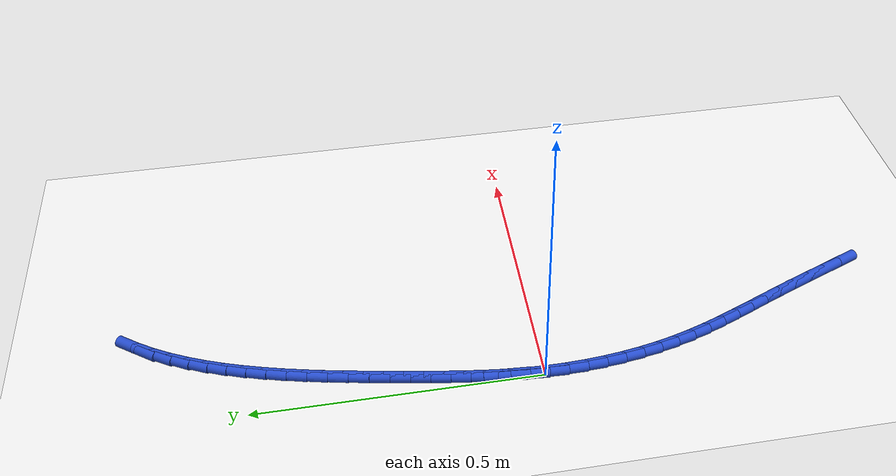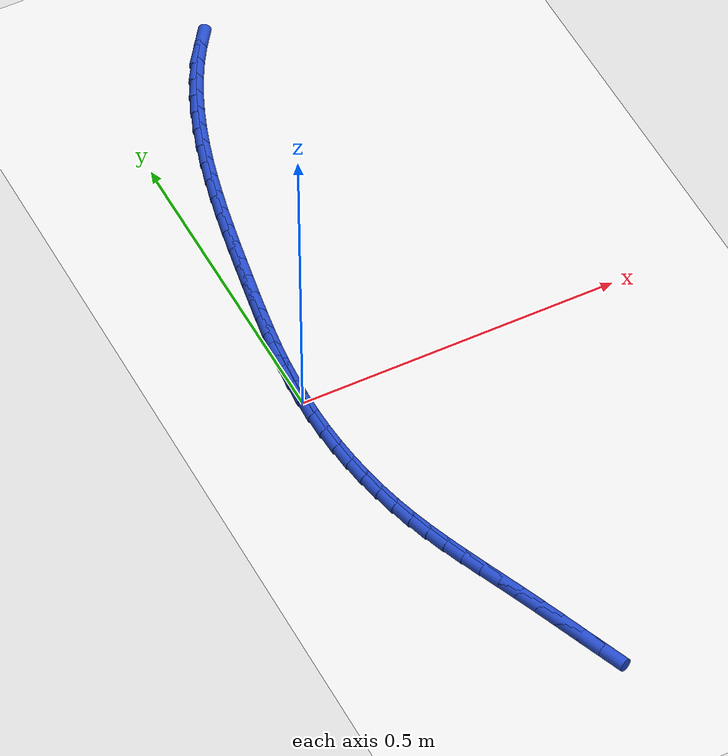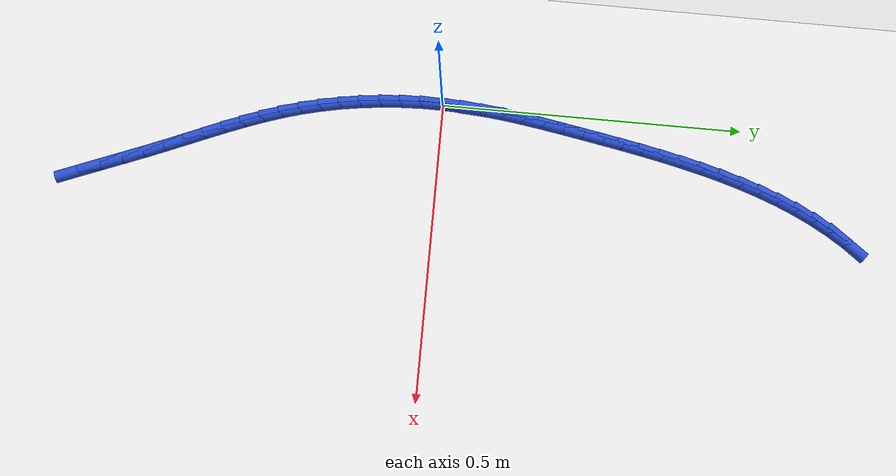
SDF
<sdf version="1.6">
 <world name="default">
  <model name="ground_plane">
   <static>1</static>
   <link name="link">
    <collision name="collision">
     <geometry><plane><normal>0 0 1</normal><size>100 100</size></plane></geometry>
     <surface><friction><ode><mu>100</mu><mu2>50</mu2></ode></friction></surface>
    </collision>
    <visual name="visual">
     <cast_shadows>0</cast_shadows>
     <geometry><plane><normal>0 0 1</normal><size>100 100</size></plane></geometry>
     <material>
      <script><uri>file://media/materials/scripts/gazebo.material</uri><name>Gazebo/WhiteGlow</name></script>
     </material>
    </visual>
   </link>
  </model>
  <model name="line">
   <link name="link_0">
    <pose>8.673617379884035e-19 -3.469446951953614e-17 0.01 0 1.57 1.5308168019717938</pose>
    <collision name="collision">
     <geometry><cylinder><radius>0.01</radius><length>0.08</length></cylinder></geometry>
    </collision>
    <visual name="visual">
     <material>
      <script><name>Gazebo/Blue</name><uri>file://media/materials/scripts/gazebo.material</uri></script>
     </material>
     <geometry><cylinder><radius>0.01</radius><length>0.08</length></cylinder></geometry>
    </visual>
   </link>
   <link name="link_1">
    <pose>0.0013352738086139177 0.03338114501231601 0.01 0 1.57 1.495564774774981</pose>
    <collision name="collision">
     <geometry><cylinder><radius>0.01</radius><length>0.08</length></cylinder></geometry>
    </collision>
    <visual name="visual">
     <material>
      <script><name>Gazebo/Blue</name><uri>file://media/materials/scripts/gazebo.material</uri></script>
     </material>
     <geometry><cylinder><radius>0.01</radius><length>0.08</length></cylinder></geometry>
    </visual>
   </link>
   <link name="link_2">
    <pose>0.003835786866249393 0.0665559732999649 0.01 0 1.57 1.4654453502533111</pose>
    <collision name="collision">
     <geometry><cylinder><radius>0.01</radius><length>0.08</length></cylinder></geometry>
    </collision>
    <visual name="visual">
     <material>
      <script><name>Gazebo/Blue</name><uri>file://media/materials/scripts/gazebo.material</uri></script>
     </material>
     <geometry><cylinder><radius>0.01</radius><length>0.08</length></cylinder></geometry>
    </visual>
   </link>
   <link name="link_3">
    <pose>0.00733151701681408 0.09961487649468123 0.01 0 1.57 1.44072992684641</pose>
    <collision name="collision">
     <geometry><cylinder><radius>0.01</radius><length>0.08</length></cylinder></geometry>
    </collision>
    <visual name="visual">
     <material>
      <script><name>Gazebo/Blue</name><uri>file://media/materials/scripts/gazebo.material</uri></script>
     </material>
     <geometry><cylinder><radius>0.01</radius><length>0.08</length></cylinder></geometry>
    </visual>
   </link>
   <link name="link_4">
    <pose>0.011652442104215637 0.1326482462281996 0.01 0 1.57 1.421570619040127</pose>
    <collision name="collision">
     <geometry><cylinder><radius>0.01</radius><length>0.08</length></cylinder></geometry>
    </collision>
    <visual name="visual">
     <material>
      <script><name>Gazebo/Blue</name><uri>file://media/materials/scripts/gazebo.material</uri></script>
     </material>
     <geometry><cylinder><radius>0.01</radius><length>0.08</length></cylinder></geometry>
    </visual>
   </link>
   <link name="link_5">
    <pose>0.01662853997236172 0.16574647413225468 0.01 0 1.57 1.4080185188563408</pose>
    <collision name="collision">
     <geometry><cylinder><radius>0.01</radius><length>0.08</length></cylinder></geometry>
    </collision>
    <visual name="visual">
     <material>
      <script><name>Gazebo/Blue</name><uri>file://media/materials/scripts/gazebo.material</uri></script>
     </material>
     <geometry><cylinder><radius>0.01</radius><length>0.08</length></cylinder></geometry>
    </visual>
   </link>
   <link name="link_6">
    <pose>0.022089788465159993 0.19899995183858105 0.01 0 1.57 1.4000417860296894</pose>
    <collision name="collision">
     <geometry><cylinder><radius>0.01</radius><length>0.08</length></cylinder></geometry>
    </collision>
    <visual name="visual">
     <material>
      <script><name>Gazebo/Blue</name><uri>file://media/materials/scripts/gazebo.material</uri></script>
     </material>
     <geometry><cylinder><radius>0.01</radius><length>0.08</length></cylinder></geometry>
    </visual>
   </link>
   <link name="link_7">
    <pose>0.027866165426518093 0.2324990709789133 0.01 0 1.57 1.3967645328675942</pose>
    <collision name="collision">
     <geometry><cylinder><radius>0.01</radius><length>0.08</length></cylinder></geometry>
    </collision>
    <visual name="visual">
     <material>
      <script><name>Gazebo/Blue</name><uri>file://media/materials/scripts/gazebo.material</uri></script>
     </material>
     <geometry><cylinder><radius>0.01</radius><length>0.08</length></cylinder></geometry>
    </visual>
   </link>
   <link name="link_8">
    <pose>0.03381162684093896 0.26631654886136963 0.01 0 1.57 1.3923278908149244</pose>
    <collision name="collision">
     <geometry><cylinder><radius>0.01</radius><length>0.08</length></cylinder></geometry>
    </collision>
    <visual name="visual">
     <material>
      <script><name>Gazebo/Blue</name><uri>file://media/materials/scripts/gazebo.material</uri></script>
     </material>
     <geometry><cylinder><radius>0.01</radius><length>0.08</length></cylinder></geometry>
    </visual>
   </link>
   <link name="link_9">
    <pose>0.03995868702896481 0.300393487175124 0.01 0 1.57 1.3841546744231248</pose>
    <collision name="collision">
     <geometry><cylinder><radius>0.01</radius><length>0.08</length></cylinder></geometry>
    </collision>
    <visual name="visual">
     <material>
      <script><name>Gazebo/Blue</name><uri>file://media/materials/scripts/gazebo.material</uri></script>
     </material>
     <geometry><cylinder><radius>0.01</radius><length>0.08</length></cylinder></geometry>
    </visual>
   </link>
   <link name="link_10">
    <pose>0.04642041999198836 0.33461160694702885 0.01 0 1.57 1.3722293470910452</pose>
    <collision name="collision">
     <geometry><cylinder><radius>0.01</radius><length>0.08</length></cylinder></geometry>
    </collision>
    <visual name="visual">
     <material>
      <script><name>Gazebo/Blue</name><uri>file://media/materials/scripts/gazebo.material</uri></script>
     </material>
     <geometry><cylinder><radius>0.01</radius><length>0.08</length></cylinder></geometry>
    </visual>
   </link>
   <link name="link_11">
    <pose>0.05331029121193093 0.36885234064304756 0.01 0 1.57 1.3564924496723376</pose>
    <collision name="collision">
     <geometry><cylinder><radius>0.01</radius><length>0.08</length></cylinder></geometry>
    </collision>
    <visual name="visual">
     <material>
      <script><name>Gazebo/Blue</name><uri>file://media/materials/scripts/gazebo.material</uri></script>
     </material>
     <geometry><cylinder><radius>0.01</radius><length>0.08</length></cylinder></geometry>
    </visual>
   </link>
   <link name="link_12">
    <pose>0.060741766170713994 0.40299712072914445 0.01 0 1.57 1.336832508366309</pose>
    <collision name="collision">
     <geometry><cylinder><radius>0.01</radius><length>0.08</length></cylinder></geometry>
    </collision>
    <visual name="visual">
     <material>
      <script><name>Gazebo/Blue</name><uri>file://media/materials/scripts/gazebo.material</uri></script>
     </material>
     <geometry><cylinder><radius>0.01</radius><length>0.08</length></cylinder></geometry>
    </visual>
   </link>
   <link name="link_13">
    <pose>0.06882831035025888 0.4369273796712832 0.01 0 1.57 1.3130907788760848</pose>
    <collision name="collision">
     <geometry><cylinder><radius>0.01</radius><length>0.08</length></cylinder></geometry>
    </collision>
    <visual name="visual">
     <material>
      <script><name>Gazebo/Blue</name><uri>file://media/materials/scripts/gazebo.material</uri></script>
     </material>
     <geometry><cylinder><radius>0.01</radius><length>0.08</length></cylinder></geometry>
    </visual>
   </link>
   <link name="link_14">
    <pose>0.07768338923248697 0.4705245499354275 0.01 0 1.57 1.285067066201021</pose>
    <collision name="collision">
     <geometry><cylinder><radius>0.01</radius><length>0.08</length></cylinder></geometry>
    </collision>
    <visual name="visual">
     <material>
      <script><name>Gazebo/Blue</name><uri>file://media/materials/scripts/gazebo.material</uri></script>
     </material>
     <geometry><cylinder><radius>0.01</radius><length>0.08</length></cylinder></geometry>
    </visual>
   </link>
   <link name="link_15">
    <pose>0.08742046829931965 0.5036700639875412 0.01 0 1.57 1.2525277943087436</pose>
    <collision name="collision">
     <geometry><cylinder><radius>0.01</radius><length>0.08</length></cylinder></geometry>
    </collision>
    <visual name="visual">
     <material>
      <script><name>Gazebo/Blue</name><uri>file://media/materials/scripts/gazebo.material</uri></script>
     </material>
     <geometry><cylinder><radius>0.01</radius><length>0.08</length></cylinder></geometry>
    </visual>
   </link>
   <link name="link_16">
    <pose>0.09815301303267832 0.5362453542935881 0.01 0 1.57 1.2152177916173208</pose>
    <collision name="collision">
     <geometry><cylinder><radius>0.01</radius><length>0.08</length></cylinder></geometry>
    </collision>
    <visual name="visual">
     <material>
      <script><name>Gazebo/Blue</name><uri>file://media/materials/scripts/gazebo.material</uri></script>
     </material>
     <geometry><cylinder><radius>0.01</radius><length>0.08</length></cylinder></geometry>
    </visual>
   </link>
   <link name="link_17">
    <pose>0.10999448891448435 0.5681318533195325 0.01 0 1.57 1.1728775287144781</pose>
    <collision name="collision">
     <geometry><cylinder><radius>0.01</radius><length>0.08</length></cylinder></geometry>
    </collision>
    <visual name="visual">
     <material>
      <script><name>Gazebo/Blue</name><uri>file://media/materials/scripts/gazebo.material</uri></script>
     </material>
     <geometry><cylinder><radius>0.01</radius><length>0.08</length></cylinder></geometry>
    </visual>
   </link>
   <link name="link_18">
    <pose>0.12305836142665919 0.5992109935313377 0.01 0 1.57 1.1252676577298741</pose>
    <collision name="collision">
     <geometry><cylinder><radius>0.01</radius><length>0.08</length></cylinder></geometry>
    </collision>
    <visual name="visual">
     <material>
      <script><name>Gazebo/Blue</name><uri>file://media/materials/scripts/gazebo.material</uri></script>
     </material>
     <geometry><cylinder><radius>0.01</radius><length>0.08</length></cylinder></geometry>
    </visual>
   </link>
   <link name="link_19">
    <pose>0.13745809605112405 0.6293642073949672 0.01 0 1.57 1.0722024168929365</pose>
    <collision name="collision">
     <geometry><cylinder><radius>0.01</radius><length>0.08</length></cylinder></geometry>
    </collision>
    <visual name="visual">
     <material>
      <script><name>Gazebo/Blue</name><uri>file://media/materials/scripts/gazebo.material</uri></script>
     </material>
     <geometry><cylinder><radius>0.01</radius><length>0.08</length></cylinder></geometry>
    </visual>
   </link>
   <link name="link_20">
    <pose>0.15330715826980051 0.6584729273763859 0.01 0 1.57 1.013592426569128</pose>
    <collision name="collision">
     <geometry><cylinder><radius>0.01</radius><length>0.08</length></cylinder></geometry>
    </collision>
    <visual name="visual">
     <material>
      <script><name>Gazebo/Blue</name><uri>file://media/materials/scripts/gazebo.material</uri></script>
     </material>
     <geometry><cylinder><radius>0.01</radius><length>0.08</length></cylinder></geometry>
    </visual>
   </link>
   <link name="link_21">
    <pose>0.1707190135646099 0.6864185859415569 0.01 0 1.57 0.949495225820989</pose>
    <collision name="collision">
     <geometry><cylinder><radius>0.01</radius><length>0.08</length></cylinder></geometry>
    </collision>
    <visual name="visual">
     <material>
      <script><name>Gazebo/Blue</name><uri>file://media/materials/scripts/gazebo.material</uri></script>
     </material>
     <geometry><cylinder><radius>0.01</radius><length>0.08</length></cylinder></geometry>
    </visual>
   </link>
   <link name="link_242">
    <pose>0.1648756072402854 -0.5924285218628222 0.01 0 1.57 -1.1962518495015706</pose>
    <collision name="collision">
     <geometry><cylinder><radius>0.01</radius><length>0.08</length></cylinder></geometry>
    </collision>
    <visual name="visual">
     <material>
      <script><name>Gazebo/Blue</name><uri>file://media/materials/scripts/gazebo.material</uri></script>
     </material>
     <geometry><cylinder><radius>0.01</radius><length>0.08</length></cylinder></geometry>
    </visual>
   </link>
   <link name="link_243">
    <pose>0.1505563375199032 -0.5560020425144964 0.01 0 1.57 -1.1981993883338942</pose>
    <collision name="collision">
     <geometry><cylinder><radius>0.01</radius><length>0.08</length></cylinder></geometry>
    </collision>
    <visual name="visual">
     <material>
      <script><name>Gazebo/Blue</name><uri>file://media/materials/scripts/gazebo.material</uri></script>
     </material>
     <geometry><cylinder><radius>0.01</radius><length>0.08</length></cylinder></geometry>
    </visual>
   </link>
   <link name="link_244">
    <pose>0.13651875907982586 -0.5200868779468131 0.01 0 1.57 -1.1951898226489899</pose>
    <collision name="collision">
     <geometry><cylinder><radius>0.01</radius><length>0.08</length></cylinder></geometry>
    </collision>
    <visual name="visual">
     <material>
      <script><name>Gazebo/Blue</name><uri>file://media/materials/scripts/gazebo.material</uri></script>
     </material>
     <geometry><cylinder><radius>0.01</radius><length>0.08</length></cylinder></geometry>
    </visual>
   </link>
   <link name="link_245">
    <pose>0.1226968274376274 -0.48503494409608083 0.01 0 1.57 -1.1869280044771926</pose>
    <collision name="collision">
     <geometry><cylinder><radius>0.01</radius><length>0.08</length></cylinder></geometry>
    </collision>
    <visual name="visual">
     <material>
      <script><name>Gazebo/Blue</name><uri>file://media/materials/scripts/gazebo.material</uri></script>
     </material>
     <geometry><cylinder><radius>0.01</radius><length>0.08</length></cylinder></geometry>
    </visual>
   </link>
   <link name="link_246">
    <pose>0.1090270070478043 -0.4511908068905124 0.01 0 1.57 -1.178213923424467</pose>
    <collision name="collision">
     <geometry><cylinder><radius>0.01</radius><length>0.08</length></cylinder></geometry>
    </collision>
    <visual name="visual">
     <material>
      <script><name>Gazebo/Blue</name><uri>file://media/materials/scripts/gazebo.material</uri></script>
     </material>
     <geometry><cylinder><radius>0.01</radius><length>0.08</length></cylinder></geometry>
    </visual>
   </link>
   <link name="link_247">
    <pose>0.095540639374451 -0.4186210871322766 0.01 0 1.57 -1.1762939261620586</pose>
    <collision name="collision">
     <geometry><cylinder><radius>0.01</radius><length>0.08</length></cylinder></geometry>
    </collision>
    <visual name="visual">
     <material>
      <script><name>Gazebo/Blue</name><uri>file://media/materials/scripts/gazebo.material</uri></script>
     </material>
     <geometry><cylinder><radius>0.01</radius><length>0.08</length></cylinder></geometry>
    </visual>
   </link>
   <link name="link_248">
    <pose>0.08239079850168209 -0.387035786158429 0.01 0 1.57 -1.1823250144292305</pose>
    <collision name="collision">
     <geometry><cylinder><radius>0.01</radius><length>0.08</length></cylinder></geometry>
    </collision>
    <visual name="visual">
     <material>
      <script><name>Gazebo/Blue</name><uri>file://media/materials/scripts/gazebo.material</uri></script>
     </material>
     <geometry><cylinder><radius>0.01</radius><length>0.08</length></cylinder></geometry>
    </visual>
   </link>
   <link name="link_249">
    <pose>0.06973854338826665 -0.3561215133694371 0.01 0 1.57 -1.196768423621932</pose>
    <collision name="collision">
     <geometry><cylinder><radius>0.01</radius><length>0.08</length></cylinder></geometry>
    </collision>
    <visual name="visual">
     <material>
      <script><name>Gazebo/Blue</name><uri>file://media/materials/scripts/gazebo.material</uri></script>
     </material>
     <geometry><cylinder><radius>0.01</radius><length>0.08</length></cylinder></geometry>
    </visual>
   </link>
   <link name="link_250">
    <pose>0.05774493299297375 -0.32556487816576823 0.01 0 1.57 -1.2197551493080676</pose>
    <collision name="collision">
     <geometry><cylinder><radius>0.01</radius><length>0.08</length></cylinder></geometry>
    </collision>
    <visual name="visual">
     <material>
      <script><name>Gazebo/Blue</name><uri>file://media/materials/scripts/gazebo.material</uri></script>
     </material>
     <geometry><cylinder><radius>0.01</radius><length>0.08</length></cylinder></geometry>
    </visual>
   </link>
   <link name="link_251">
    <pose>0.046571026274572394 -0.2950524899478896 0.01 0 1.57 -1.2510167474024783</pose>
    <collision name="collision">
     <geometry><cylinder><radius>0.01</radius><length>0.08</length></cylinder></geometry>
    </collision>
    <visual name="visual">
     <material>
      <script><name>Gazebo/Blue</name><uri>file://media/materials/scripts/gazebo.material</uri></script>
     </material>
     <geometry><cylinder><radius>0.01</radius><length>0.08</length></cylinder></geometry>
    </visual>
   </link>
   <link name="link_252">
    <pose>0.036377882191831364 -0.2642709581162677 0.01 0 1.57 -1.289829299230727</pose>
    <collision name="collision">
     <geometry><cylinder><radius>0.01</radius><length>0.08</length></cylinder></geometry>
    </collision>
    <visual name="visual">
     <material>
      <script><name>Gazebo/Blue</name><uri>file://media/materials/scripts/gazebo.material</uri></script>
     </material>
     <geometry><cylinder><radius>0.01</radius><length>0.08</length></cylinder></geometry>
    </visual>
   </link>
   <link name="link_253">
    <pose>0.027326349747463313 -0.23290754135690017 0.01 0 1.57 -1.3328270407377816</pose>
    <collision name="collision">
     <geometry><cylinder><radius>0.01</radius><length>0.08</length></cylinder></geometry>
    </collision>
    <visual name="visual">
     <material>
      <script><name>Gazebo/Blue</name><uri>file://media/materials/scripts/gazebo.material</uri></script>
     </material>
     <geometry><cylinder><radius>0.01</radius><length>0.08</length></cylinder></geometry>
    </visual>
   </link>
   <link name="link_254">
    <pose>0.01953407274825371 -0.2007831096879626 0.01 0 1.57 -1.3746495020867713</pose>
    <collision name="collision">
     <geometry><cylinder><radius>0.01</radius><length>0.08</length></cylinder></geometry>
    </collision>
    <visual name="visual">
     <material>
      <script><name>Gazebo/Blue</name><uri>file://media/materials/scripts/gazebo.material</uri></script>
     </material>
     <geometry><cylinder><radius>0.01</radius><length>0.08</length></cylinder></geometry>
    </visual>
   </link>
   <link name="link_255">
    <pose>0.0130229318622643 -0.16801467900232078 0.01 0 1.57 -1.4150720152409084</pose>
    <collision name="collision">
     <geometry><cylinder><radius>0.01</radius><length>0.08</length></cylinder></geometry>
    </collision>
    <visual name="visual">
     <material>
      <script><name>Gazebo/Blue</name><uri>file://media/materials/scripts/gazebo.material</uri></script>
     </material>
     <geometry><cylinder><radius>0.01</radius><length>0.08</length></cylinder></geometry>
    </visual>
   </link>
   <link name="link_256">
    <pose>0.007801947971477358 -0.13475903386215907 0.01 0 1.57 -1.454553929396773</pose>
    <collision name="collision">
     <geometry><cylinder><radius>0.01</radius><length>0.08</length></cylinder></geometry>
    </collision>
    <visual name="visual">
     <material>
      <script><name>Gazebo/Blue</name><uri>file://media/materials/scripts/gazebo.material</uri></script>
     </material>
     <geometry><cylinder><radius>0.01</radius><length>0.08</length></cylinder></geometry>
    </visual>
   </link>
   <link name="link_257">
    <pose>0.0038801419578751765 -0.10117295882966182 0.01 0 1.57 -1.4935325241765485</pose>
    <collision name="collision">
     <geometry><cylinder><radius>0.01</radius><length>0.08</length></cylinder></geometry>
    </collision>
    <visual name="visual">
     <material>
      <script><name>Gazebo/Blue</name><uri>file://media/materials/scripts/gazebo.material</uri></script>
     </material>
     <geometry><cylinder><radius>0.01</radius><length>0.08</length></cylinder></geometry>
    </visual>
   </link>
   <link name="link_258">
    <pose>0.0012665347034400325 -0.06741323846701333 0.01 0 1.57 -1.5324339007160874</pose>
    <collision name="collision">
     <geometry><cylinder><radius>0.01</radius><length>0.08</length></cylinder></geometry>
    </collision>
    <visual name="visual">
     <material>
      <script><name>Gazebo/Blue</name><uri>file://media/materials/scripts/gazebo.material</uri></script>
     </material>
     <geometry><cylinder><radius>0.01</radius><length>0.08</length></cylinder></geometry>
    </visual>
   </link>
   <link name="link_259">
    <pose>-2.9852909845786302e-05 -0.03363665733639799 0.01 0 1.57 1.5699088158359717</pose>
    <collision name="collision">
     <geometry><cylinder><radius>0.01</radius><length>0.08</length></cylinder></geometry>
    </collision>
    <visual name="visual">
     <material>
      <script><name>Gazebo/Blue</name><uri>file://media/materials/scripts/gazebo.material</uri></script>
     </material>
     <geometry><cylinder><radius>0.01</radius><length>0.08</length></cylinder></geometry>
    </visual>
   </link>
   <link name="link_260">
    <pose>4.336808689942018e-18 -7.632783294297951e-17 0.01 0 1.57 1.5298738825899847</pose>
    <collision name="collision">
     <geometry><cylinder><radius>0.01</radius><length>0.08</length></cylinder></geometry>
    </collision>
    <visual name="visual">
     <material>
      <script><name>Gazebo/Blue</name><uri>file://media/materials/scripts/gazebo.material</uri></script>
     </material>
     <geometry><cylinder><radius>0.01</radius><length>0.08</length></cylinder></geometry>
    </visual>
   </link>
   <link name="link_261">
    <pose>0.0013651143149596805 0.03333994897999602 0.01 0 1.57 1.488595574762715</pose>
    <collision name="collision">
     <geometry><cylinder><radius>0.01</radius><length>0.08</length></cylinder></geometry>
    </collision>
    <visual name="visual">
     <material>
      <script><name>Gazebo/Blue</name><uri>file://media/materials/scripts/gazebo.material</uri></script>
     </material>
     <geometry><cylinder><radius>0.01</radius><length>0.08</length></cylinder></geometry>
    </visual>
   </link>
   <link name="link_262">
    <pose>0.004074510917015535 0.06622640504140602 0.01 0 1.57 1.509349814409478</pose>
    <collision name="collision">
     <geometry><cylinder><radius>0.01</radius><length>0.08</length></cylinder></geometry>
    </collision>
    <visual name="visual">
     <material>
      <script><name>Gazebo/Blue</name><uri>file://media/materials/scripts/gazebo.material</uri></script>
     </material>
     <geometry><cylinder><radius>0.01</radius><length>0.08</length></cylinder></geometry>
    </visual>
   </link>
  </model>
 </world>
</sdf>
